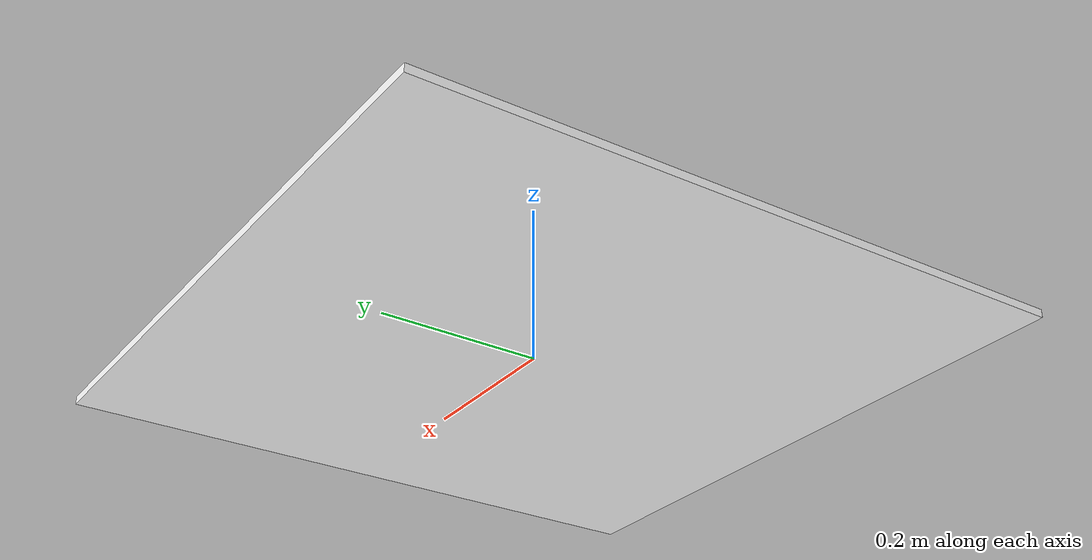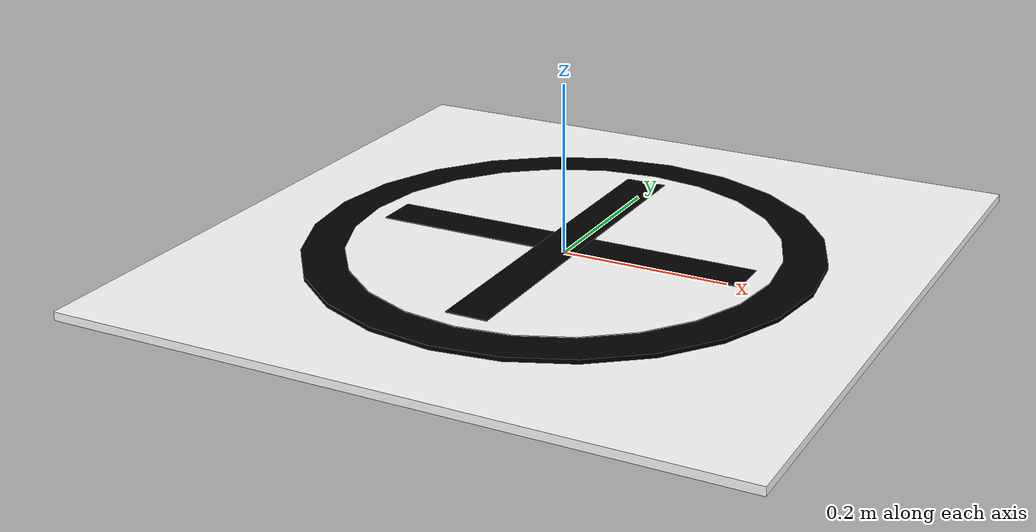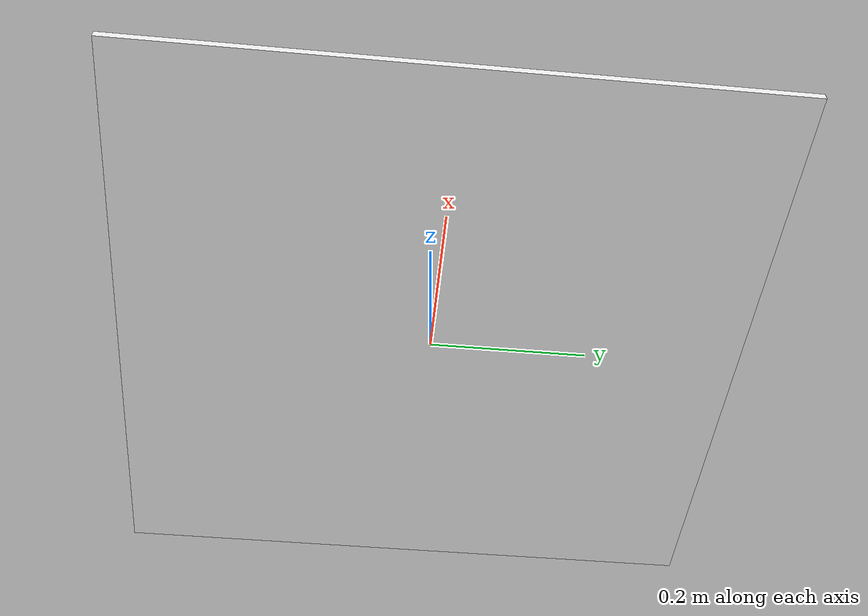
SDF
<?xml version='1.0'?>
<sdf version="1.7">
  <model name="character_cross">
    <static>true</static>
    <link name="main_link">
      <!-- 基础结构 -->
      <visual name="base">
        <geometry>
          <box>
            <size>0.8 0.8 0.01</size>
          </box>
        </geometry>
        <material>
          <ambient>1 1 1 1</ambient>
          <diffuse>1 1 1 1</diffuse>
        </material>
      </visual>

      <visual name="outer_ring">
        <pose>0 0 0.005 0 0 0</pose>
        <geometry>
          <cylinder>
            <radius>0.3</radius>
            <length>0.01</length>
          </cylinder>
        </geometry>
        <material>
          <ambient>0 0 0 1</ambient>
          <diffuse>0 0 0 1</diffuse>
        </material>
      </visual>

      <visual name="inner_circle">
        <pose>0 0 0.006 0 0 0</pose>
        <geometry>
          <cylinder>
            <radius>0.25</radius>
            <length>0.01</length>
          </cylinder>
        </geometry>
        <material>
          <ambient>1 1 1 1</ambient>
          <diffuse>1 1 1 1</diffuse>
        </material>
      </visual>

      <!-- 十字架结构 -->
      <visual name="cross_vertical">
        <pose>0 0 0.007 0 0 0</pose>
        <geometry>
          <box>
            <size>0.05 0.45 0.01</size>
          </box>
        </geometry>
        <material>
          <ambient>0 0 0 1</ambient>
          <diffuse>0 0 0 1</diffuse>
        </material>
      </visual>

      <visual name="cross_horizontal">
        <pose>0 0 0.007 0 0 0</pose>
        <geometry>
          <box>
            <size>0.45 0.05 0.01</size>
          </box>
        </geometry>
        <material>
          <ambient>0 0 0 1</ambient>
          <diffuse>0 0 0 1</diffuse>
        </material>
      </visual>
    </link>
  </model>
</sdf>
